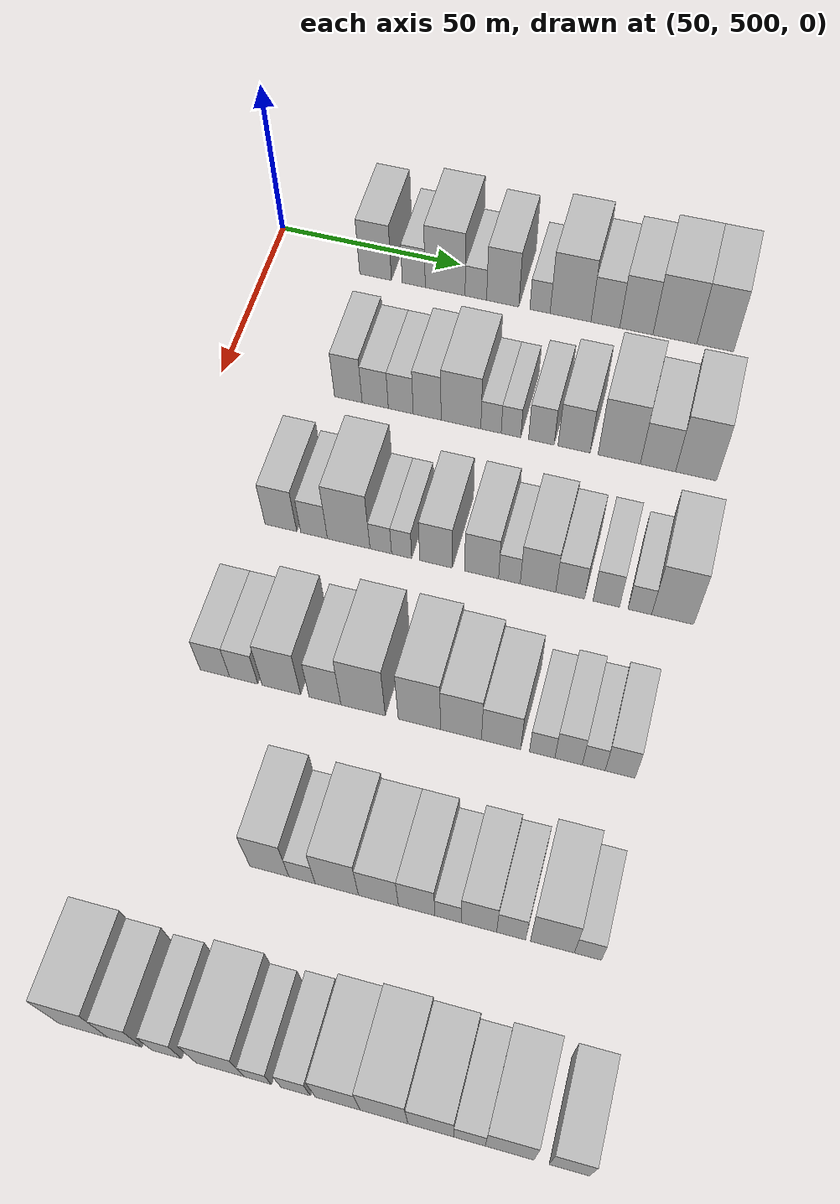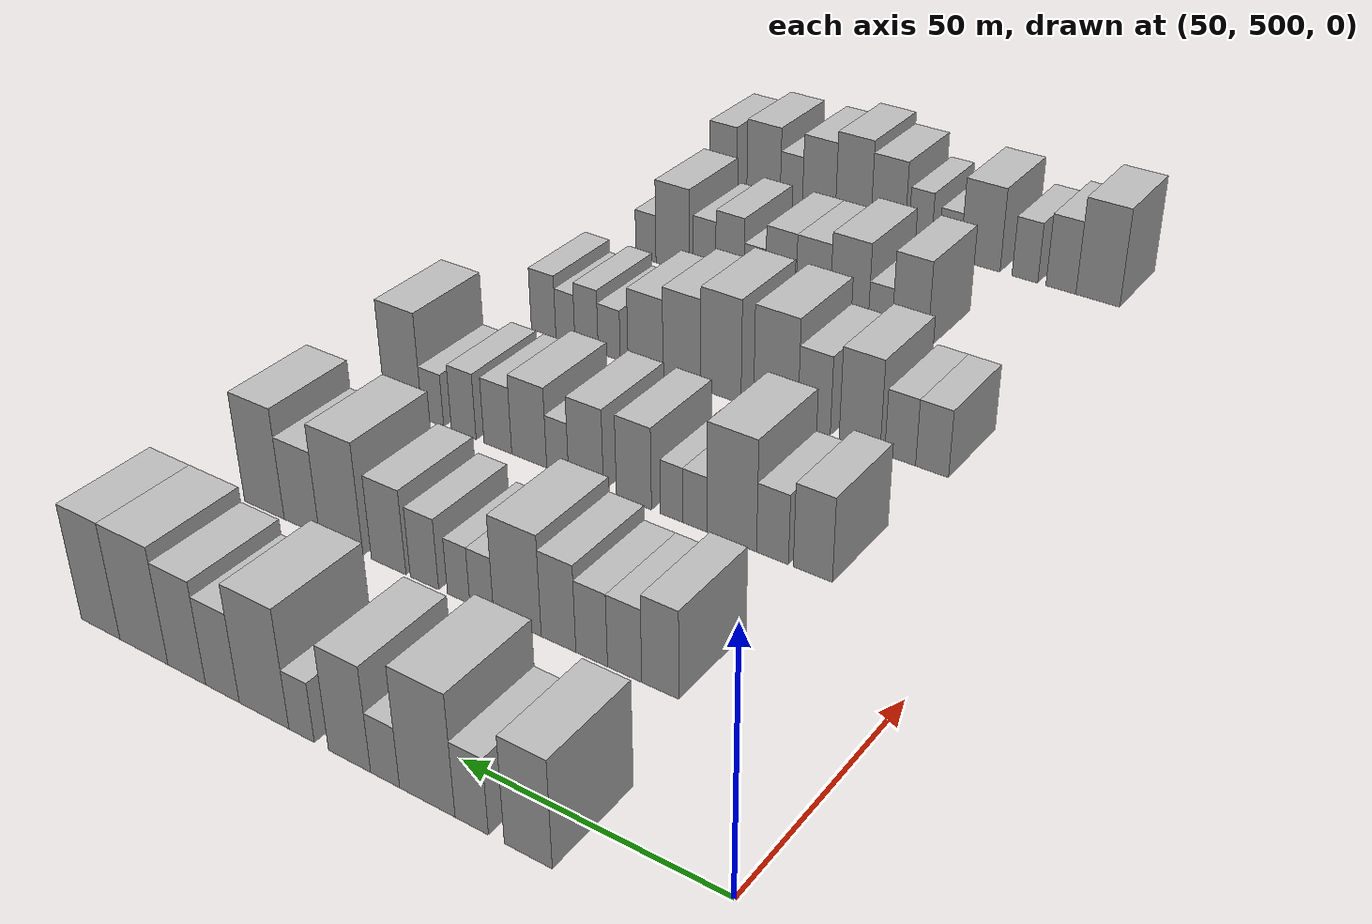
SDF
<sdf version="1.6">
 <world name="default">
  <model name="building_127">
   <static>1</static>
   <pose>50.0000 529.2701 0 0.000000 0.000000 0.000000</pose>
   <link name="link">
    <pose>0 0 10.50 0 0 0</pose>
    <collision name="collision"><geometry><box><size>20.0000 8.8468 21.0000</size></box></geometry></collision>
    <visual name="visual">
     <cast_shadows>0</cast_shadows>
     <geometry><box><size>20.0000 8.8468 21.0000</size></box></geometry>
     <material>
      <script>
       <uri>model://HANNAS_wall/materials/scripts</uri>
       <uri>model://HANNAS_wall/materials/textures</uri>
       <name>vrc/HANNAS_wall</name>
      </script>
     </material>
    </visual>
   </link>
  </model>
  <model name="building_128">
   <static>1</static>
   <pose>50.0000 539.8802 0 0.000000 0.000000 0.000000</pose>
   <link name="link">
    <pose>0 0 7.50 0 0 0</pose>
    <collision name="collision"><geometry><box><size>20.0000 6.3735 15.0000</size></box></geometry></collision>
    <visual name="visual">
     <cast_shadows>0</cast_shadows>
     <geometry><box><size>20.0000 6.3735 15.0000</size></box></geometry>
     <material>
      <script>
       <uri>model://HANNAS_wall/materials/scripts</uri>
       <uri>model://HANNAS_wall/materials/textures</uri>
       <name>vrc/HANNAS_wall</name>
      </script>
     </material>
    </visual>
   </link>
  </model>
  <model name="building_129">
   <static>1</static>
   <pose>50.0000 548.5439 0 0.000000 0.000000 0.000000</pose>
   <link name="link">
    <pose>0 0 12.00 0 0 0</pose>
    <collision name="collision"><geometry><box><size>20.0000 10.9537 24.0000</size></box></geometry></collision>
    <visual name="visual">
     <cast_shadows>0</cast_shadows>
     <geometry><box><size>20.0000 10.9537 24.0000</size></box></geometry>
     <material>
      <script>
       <uri>model://HANNAS_wall/materials/scripts</uri>
       <uri>model://HANNAS_wall/materials/textures</uri>
       <name>vrc/HANNAS_wall</name>
      </script>
     </material>
    </visual>
   </link>
  </model>
  <model name="building_130">
   <static>1</static>
   <pose>50.0000 556.9688 0 0.000000 0.000000 0.000000</pose>
   <link name="link">
    <pose>0 0 6.00 0 0 0</pose>
    <collision name="collision"><geometry><box><size>20.0000 5.8962 12.0000</size></box></geometry></collision>
    <visual name="visual">
     <cast_shadows>0</cast_shadows>
     <geometry><box><size>20.0000 5.8962 12.0000</size></box></geometry>
     <material>
      <script>
       <uri>model://HANNAS_wall/materials/scripts</uri>
       <uri>model://HANNAS_wall/materials/textures</uri>
       <name>vrc/HANNAS_wall</name>
      </script>
     </material>
    </visual>
   </link>
  </model>
  <model name="building_131">
   <static>1</static>
   <pose>50.0000 564.3081 0 0.000000 0.000000 0.000000</pose>
   <link name="link">
    <pose>0 0 10.50 0 0 0</pose>
    <collision name="collision"><geometry><box><size>20.0000 8.7823 21.0000</size></box></geometry></collision>
    <visual name="visual">
     <cast_shadows>0</cast_shadows>
     <geometry><box><size>20.0000 8.7823 21.0000</size></box></geometry>
     <material>
      <script>
       <uri>model://HANNAS_wall/materials/scripts</uri>
       <uri>model://HANNAS_wall/materials/textures</uri>
       <name>vrc/HANNAS_wall</name>
      </script>
     </material>
    </visual>
   </link>
  </model>
  <model name="building_132">
   <static>1</static>
   <pose>50.0000 574.4298 0 0.000000 0.000000 0.000000</pose>
   <link name="link">
    <pose>0 0 6.00 0 0 0</pose>
    <collision name="collision"><geometry><box><size>20.0000 5.4611 12.0000</size></box></geometry></collision>
    <visual name="visual">
     <cast_shadows>0</cast_shadows>
     <geometry><box><size>20.0000 5.4611 12.0000</size></box></geometry>
     <material>
      <script>
       <uri>model://HANNAS_wall/materials/scripts</uri>
       <uri>model://HANNAS_wall/materials/textures</uri>
       <name>vrc/HANNAS_wall</name>
      </script>
     </material>
    </visual>
   </link>
  </model>
  <model name="building_133">
   <static>1</static>
   <pose>50.0000 582.6562 0 0.000000 0.000000 0.000000</pose>
   <link name="link">
    <pose>0 0 12.00 0 0 0</pose>
    <collision name="collision"><geometry><box><size>20.0000 10.9917 24.0000</size></box></geometry></collision>
    <visual name="visual">
     <cast_shadows>0</cast_shadows>
     <geometry><box><size>20.0000 10.9917 24.0000</size></box></geometry>
     <material>
      <script>
       <uri>model://HANNAS_wall/materials/scripts</uri>
       <uri>model://HANNAS_wall/materials/textures</uri>
       <name>vrc/HANNAS_wall</name>
      </script>
     </material>
    </visual>
   </link>
  </model>
  <model name="building_134">
   <static>1</static>
   <pose>50.0000 592.0019 0 0.000000 0.000000 0.000000</pose>
   <link name="link">
    <pose>0 0 9.00 0 0 0</pose>
    <collision name="collision"><geometry><box><size>20.0000 7.6996 18.0000</size></box></geometry></collision>
    <visual name="visual">
     <cast_shadows>0</cast_shadows>
     <geometry><box><size>20.0000 7.6996 18.0000</size></box></geometry>
     <material>
      <script>
       <uri>model://HANNAS_wall/materials/scripts</uri>
       <uri>model://HANNAS_wall/materials/textures</uri>
       <name>vrc/HANNAS_wall</name>
      </script>
     </material>
    </visual>
   </link>
  </model>
  <model name="building_135">
   <static>1</static>
   <pose>50.0000 600.2642 0 0.000000 0.000000 0.000000</pose>
   <link name="link">
    <pose>0 0 10.50 0 0 0</pose>
    <collision name="collision"><geometry><box><size>20.0000 8.8250 21.0000</size></box></geometry></collision>
    <visual name="visual">
     <cast_shadows>0</cast_shadows>
     <geometry><box><size>20.0000 8.8250 21.0000</size></box></geometry>
     <material>
      <script>
       <uri>model://HANNAS_wall/materials/scripts</uri>
       <uri>model://HANNAS_wall/materials/textures</uri>
       <name>vrc/HANNAS_wall</name>
      </script>
     </material>
    </visual>
   </link>
  </model>
  <model name="building_136">
   <static>1</static>
   <pose>50.0000 610.4838 0 0.000000 0.000000 0.000000</pose>
   <link name="link">
    <pose>0 0 12.00 0 0 0</pose>
    <collision name="collision"><geometry><box><size>20.0000 11.6144 24.0000</size></box></geometry></collision>
    <visual name="visual">
     <cast_shadows>0</cast_shadows>
     <geometry><box><size>20.0000 11.6144 24.0000</size></box></geometry>
     <material>
      <script>
       <uri>model://HANNAS_wall/materials/scripts</uri>
       <uri>model://HANNAS_wall/materials/textures</uri>
       <name>vrc/HANNAS_wall</name>
      </script>
     </material>
    </visual>
   </link>
  </model>
  <model name="building_137">
   <static>1</static>
   <pose>50.0000 621.1025 0 0.000000 0.000000 0.000000</pose>
   <link name="link">
    <pose>0 0 12.00 0 0 0</pose>
    <collision name="collision"><geometry><box><size>20.0000 9.6230 24.0000</size></box></geometry></collision>
    <visual name="visual">
     <cast_shadows>0</cast_shadows>
     <geometry><box><size>20.0000 9.6230 24.0000</size></box></geometry>
     <material>
      <script>
       <uri>model://HANNAS_wall/materials/scripts</uri>
       <uri>model://HANNAS_wall/materials/textures</uri>
       <name>vrc/HANNAS_wall</name>
      </script>
     </material>
    </visual>
   </link>
  </model>
  <model name="building_271">
   <static>1</static>
   <pose>90.0000 533.8358 0 0.000000 0.000000 0.000000</pose>
   <link name="link">
    <pose>0 0 9.00 0 0 0</pose>
    <collision name="collision"><geometry><box><size>20.0000 7.3172 18.0000</size></box></geometry></collision>
    <visual name="visual">
     <cast_shadows>0</cast_shadows>
     <geometry><box><size>20.0000 7.3172 18.0000</size></box></geometry>
     <material>
      <script>
       <uri>model://HANNAS_wall/materials/scripts</uri>
       <uri>model://HANNAS_wall/materials/textures</uri>
       <name>vrc/HANNAS_wall</name>
      </script>
     </material>
    </visual>
   </link>
  </model>
  <model name="building_272">
   <static>1</static>
   <pose>90.0000 540.9438 0 0.000000 0.000000 0.000000</pose>
   <link name="link">
    <pose>0 0 7.50 0 0 0</pose>
    <collision name="collision"><geometry><box><size>20.0000 6.8988 15.0000</size></box></geometry></collision>
    <visual name="visual">
     <cast_shadows>0</cast_shadows>
     <geometry><box><size>20.0000 6.8988 15.0000</size></box></geometry>
     <material>
      <script>
       <uri>model://HANNAS_wall/materials/scripts</uri>
       <uri>model://HANNAS_wall/materials/textures</uri>
       <name>vrc/HANNAS_wall</name>
      </script>
     </material>
    </visual>
   </link>
  </model>
  <model name="building_273">
   <static>1</static>
   <pose>90.0000 547.6571 0 0.000000 0.000000 0.000000</pose>
   <link name="link">
    <pose>0 0 7.50 0 0 0</pose>
    <collision name="collision"><geometry><box><size>20.0000 6.5277 15.0000</size></box></geometry></collision>
    <visual name="visual">
     <cast_shadows>0</cast_shadows>
     <geometry><box><size>20.0000 6.5277 15.0000</size></box></geometry>
     <material>
      <script>
       <uri>model://HANNAS_wall/materials/scripts</uri>
       <uri>model://HANNAS_wall/materials/textures</uri>
       <name>vrc/HANNAS_wall</name>
      </script>
     </material>
    </visual>
   </link>
  </model>
  <model name="building_274">
   <static>1</static>
   <pose>90.0000 554.5570 0 0.000000 0.000000 0.000000</pose>
   <link name="link">
    <pose>0 0 9.00 0 0 0</pose>
    <collision name="collision"><geometry><box><size>20.0000 7.2721 18.0000</size></box></geometry></collision>
    <visual name="visual">
     <cast_shadows>0</cast_shadows>
     <geometry><box><size>20.0000 7.2721 18.0000</size></box></geometry>
     <material>
      <script>
       <uri>model://HANNAS_wall/materials/scripts</uri>
       <uri>model://HANNAS_wall/materials/textures</uri>
       <name>vrc/HANNAS_wall</name>
      </script>
     </material>
    </visual>
   </link>
  </model>
  <model name="building_275">
   <static>1</static>
   <pose>90.0000 563.3433 0 0.000000 0.000000 0.000000</pose>
   <link name="link">
    <pose>0 0 10.50 0 0 0</pose>
    <collision name="collision"><geometry><box><size>20.0000 10.3005 21.0000</size></box></geometry></collision>
    <visual name="visual">
     <cast_shadows>0</cast_shadows>
     <geometry><box><size>20.0000 10.3005 21.0000</size></box></geometry>
     <material>
      <script>
       <uri>model://HANNAS_wall/materials/scripts</uri>
       <uri>model://HANNAS_wall/materials/textures</uri>
       <name>vrc/HANNAS_wall</name>
      </script>
     </material>
    </visual>
   </link>
  </model>
  <model name="building_276">
   <static>1</static>
   <pose>90.0000 571.1190 0 0.000000 0.000000 0.000000</pose>
   <link name="link">
    <pose>0 0 6.00 0 0 0</pose>
    <collision name="collision"><geometry><box><size>20.0000 5.2509 12.0000</size></box></geometry></collision>
    <visual name="visual">
     <cast_shadows>0</cast_shadows>
     <geometry><box><size>20.0000 5.2509 12.0000</size></box></geometry>
     <material>
      <script>
       <uri>model://HANNAS_wall/materials/scripts</uri>
       <uri>model://HANNAS_wall/materials/textures</uri>
       <name>vrc/HANNAS_wall</name>
      </script>
     </material>
    </visual>
   </link>
  </model>
  <model name="building_277">
   <static>1</static>
   <pose>90.0000 576.2623 0 0.000000 0.000000 0.000000</pose>
   <link name="link">
    <pose>0 0 6.00 0 0 0</pose>
    <collision name="collision"><geometry><box><size>20.0000 5.0358 12.0000</size></box></geometry></collision>
    <visual name="visual">
     <cast_shadows>0</cast_shadows>
     <geometry><box><size>20.0000 5.0358 12.0000</size></box></geometry>
     <material>
      <script>
       <uri>model://HANNAS_wall/materials/scripts</uri>
       <uri>model://HANNAS_wall/materials/textures</uri>
       <name>vrc/HANNAS_wall</name>
      </script>
     </material>
    </visual>
   </link>
  </model>
  <model name="building_278">
   <static>1</static>
   <pose>90.0000 584.0441 0 0.000000 0.000000 0.000000</pose>
   <link name="link">
    <pose>0 0 7.50 0 0 0</pose>
    <collision name="collision"><geometry><box><size>20.0000 6.5279 15.0000</size></box></geometry></collision>
    <visual name="visual">
     <cast_shadows>0</cast_shadows>
     <geometry><box><size>20.0000 6.5279 15.0000</size></box></geometry>
     <material>
      <script>
       <uri>model://HANNAS_wall/materials/scripts</uri>
       <uri>model://HANNAS_wall/materials/textures</uri>
       <name>vrc/HANNAS_wall</name>
      </script>
     </material>
    </visual>
   </link>
  </model>
  <model name="building_279">
   <static>1</static>
   <pose>90.0000 592.3904 0 0.000000 0.000000 0.000000</pose>
   <link name="link">
    <pose>0 0 9.00 0 0 0</pose>
    <collision name="collision"><geometry><box><size>20.0000 8.1646 18.0000</size></box></geometry></collision>
    <visual name="visual">
     <cast_shadows>0</cast_shadows>
     <geometry><box><size>20.0000 8.1646 18.0000</size></box></geometry>
     <material>
      <script>
       <uri>model://HANNAS_wall/materials/scripts</uri>
       <uri>model://HANNAS_wall/materials/textures</uri>
       <name>vrc/HANNAS_wall</name>
      </script>
     </material>
    </visual>
   </link>
  </model>
  <model name="building_280">
   <static>1</static>
   <pose>90.0000 603.7991 0 0.000000 0.000000 0.000000</pose>
   <link name="link">
    <pose>0 0 12.00 0 0 0</pose>
    <collision name="collision"><geometry><box><size>20.0000 10.6528 24.0000</size></box></geometry></collision>
    <visual name="visual">
     <cast_shadows>0</cast_shadows>
     <geometry><box><size>20.0000 10.6528 24.0000</size></box></geometry>
     <material>
      <script>
       <uri>model://HANNAS_wall/materials/scripts</uri>
       <uri>model://HANNAS_wall/materials/textures</uri>
       <name>vrc/HANNAS_wall</name>
      </script>
     </material>
    </visual>
   </link>
  </model>
  <model name="building_281">
   <static>1</static>
   <pose>90.0000 613.5311 0 0.000000 0.000000 0.000000</pose>
   <link name="link">
    <pose>0 0 9.00 0 0 0</pose>
    <collision name="collision"><geometry><box><size>20.0000 8.8112 18.0000</size></box></geometry></collision>
    <visual name="visual">
     <cast_shadows>0</cast_shadows>
     <geometry><box><size>20.0000 8.8112 18.0000</size></box></geometry>
     <material>
      <script>
       <uri>model://HANNAS_wall/materials/scripts</uri>
       <uri>model://HANNAS_wall/materials/textures</uri>
       <name>vrc/HANNAS_wall</name>
      </script>
     </material>
    </visual>
   </link>
  </model>
  <model name="building_282">
   <static>1</static>
   <pose>90.0000 623.0344 0 0.000000 0.000000 0.000000</pose>
   <link name="link">
    <pose>0 0 12.00 0 0 0</pose>
    <collision name="collision"><geometry><box><size>20.0000 10.1955 24.0000</size></box></geometry></collision>
    <visual name="visual">
     <cast_shadows>0</cast_shadows>
     <geometry><box><size>20.0000 10.1955 24.0000</size></box></geometry>
     <material>
      <script>
       <uri>model://HANNAS_wall/materials/scripts</uri>
       <uri>model://HANNAS_wall/materials/textures</uri>
       <name>vrc/HANNAS_wall</name>
      </script>
     </material>
    </visual>
   </link>
  </model>
  <model name="building_408">
   <static>1</static>
   <pose>130.0000 529.0798 0 0.000000 0.000000 0.000000</pose>
   <link name="link">
    <pose>0 0 9.00 0 0 0</pose>
    <collision name="collision"><geometry><box><size>20.0000 8.0129 18.0000</size></box></geometry></collision>
    <visual name="visual">
     <cast_shadows>0</cast_shadows>
     <geometry><box><size>20.0000 8.0129 18.0000</size></box></geometry>
     <material>
      <script>
       <uri>model://HANNAS_wall/materials/scripts</uri>
       <uri>model://HANNAS_wall/materials/textures</uri>
       <name>vrc/HANNAS_wall</name>
      </script>
     </material>
    </visual>
   </link>
  </model>
  <model name="building_409">
   <static>1</static>
   <pose>130.0000 537.4322 0 0.000000 0.000000 0.000000</pose>
   <link name="link">
    <pose>0 0 7.50 0 0 0</pose>
    <collision name="collision"><geometry><box><size>20.0000 6.6917 15.0000</size></box></geometry></collision>
    <visual name="visual">
     <cast_shadows>0</cast_shadows>
     <geometry><box><size>20.0000 6.6917 15.0000</size></box></geometry>
     <material>
      <script>
       <uri>model://HANNAS_wall/materials/scripts</uri>
       <uri>model://HANNAS_wall/materials/textures</uri>
       <name>vrc/HANNAS_wall</name>
      </script>
     </material>
    </visual>
   </link>
  </model>
  <model name="building_410">
   <static>1</static>
   <pose>130.0000 546.0918 0 0.000000 0.000000 0.000000</pose>
   <link name="link">
    <pose>0 0 12.00 0 0 0</pose>
    <collision name="collision"><geometry><box><size>20.0000 10.6275 24.0000</size></box></geometry></collision>
    <visual name="visual">
     <cast_shadows>0</cast_shadows>
     <geometry><box><size>20.0000 10.6275 24.0000</size></box></geometry>
     <material>
      <script>
       <uri>model://HANNAS_wall/materials/scripts</uri>
       <uri>model://HANNAS_wall/materials/textures</uri>
       <name>vrc/HANNAS_wall</name>
      </script>
     </material>
    </visual>
   </link>
  </model>
  <model name="building_411">
   <static>1</static>
   <pose>130.0000 554.0796 0 0.000000 0.000000 0.000000</pose>
   <link name="link">
    <pose>0 0 6.00 0 0 0</pose>
    <collision name="collision"><geometry><box><size>20.0000 5.3481 12.0000</size></box></geometry></collision>
    <visual name="visual">
     <cast_shadows>0</cast_shadows>
     <geometry><box><size>20.0000 5.3481 12.0000</size></box></geometry>
     <material>
      <script>
       <uri>model://HANNAS_wall/materials/scripts</uri>
       <uri>model://HANNAS_wall/materials/textures</uri>
       <name>vrc/HANNAS_wall</name>
      </script>
     </material>
    </visual>
   </link>
  </model>
  <model name="building_412">
   <static>1</static>
   <pose>130.0000 559.2386 0 0.000000 0.000000 0.000000</pose>
   <link name="link">
    <pose>0 0 6.00 0 0 0</pose>
    <collision name="collision"><geometry><box><size>20.0000 4.9700 12.0000</size></box></geometry></collision>
    <visual name="visual">
     <cast_shadows>0</cast_shadows>
     <geometry><box><size>20.0000 4.9700 12.0000</size></box></geometry>
     <material>
      <script>
       <uri>model://HANNAS_wall/materials/scripts</uri>
       <uri>model://HANNAS_wall/materials/textures</uri>
       <name>vrc/HANNAS_wall</name>
      </script>
     </material>
    </visual>
   </link>
  </model>
  <model name="building_413">
   <static>1</static>
   <pose>130.0000 567.7250 0 0.000000 0.000000 0.000000</pose>
   <link name="link">
    <pose>0 0 9.00 0 0 0</pose>
    <collision name="collision"><geometry><box><size>20.0000 8.0028 18.0000</size></box></geometry></collision>
    <visual name="visual">
     <cast_shadows>0</cast_shadows>
     <geometry><box><size>20.0000 8.0028 18.0000</size></box></geometry>
     <material>
      <script>
       <uri>model://HANNAS_wall/materials/scripts</uri>
       <uri>model://HANNAS_wall/materials/textures</uri>
       <name>vrc/HANNAS_wall</name>
      </script>
     </material>
    </visual>
   </link>
  </model>
  <model name="building_414">
   <static>1</static>
   <pose>130.0000 578.8462 0 0.000000 0.000000 0.000000</pose>
   <link name="link">
    <pose>0 0 9.00 0 0 0</pose>
    <collision name="collision"><geometry><box><size>20.0000 8.2394 18.0000</size></box></geometry></collision>
    <visual name="visual">
     <cast_shadows>0</cast_shadows>
     <geometry><box><size>20.0000 8.2394 18.0000</size></box></geometry>
     <material>
      <script>
       <uri>model://HANNAS_wall/materials/scripts</uri>
       <uri>model://HANNAS_wall/materials/textures</uri>
       <name>vrc/HANNAS_wall</name>
      </script>
     </material>
    </visual>
   </link>
  </model>
  <model name="building_415">
   <static>1</static>
   <pose>130.0000 585.5854 0 0.000000 0.000000 0.000000</pose>
   <link name="link">
    <pose>0 0 6.00 0 0 0</pose>
    <collision name="collision"><geometry><box><size>20.0000 5.2391 12.0000</size></box></geometry></collision>
    <visual name="visual">
     <cast_shadows>0</cast_shadows>
     <geometry><box><size>20.0000 5.2391 12.0000</size></box></geometry>
     <material>
      <script>
       <uri>model://HANNAS_wall/materials/scripts</uri>
       <uri>model://HANNAS_wall/materials/textures</uri>
       <name>vrc/HANNAS_wall</name>
      </script>
     </material>
    </visual>
   </link>
  </model>
  <model name="building_416">
   <static>1</static>
   <pose>130.0000 592.4813 0 0.000000 0.000000 0.000000</pose>
   <link name="link">
    <pose>0 0 9.00 0 0 0</pose>
    <collision name="collision"><geometry><box><size>20.0000 8.5528 18.0000</size></box></geometry></collision>
    <visual name="visual">
     <cast_shadows>0</cast_shadows>
     <geometry><box><size>20.0000 8.5528 18.0000</size></box></geometry>
     <material>
      <script>
       <uri>model://HANNAS_wall/materials/scripts</uri>
       <uri>model://HANNAS_wall/materials/textures</uri>
       <name>vrc/HANNAS_wall</name>
      </script>
     </material>
    </visual>
   </link>
  </model>
  <model name="building_417">
   <static>1</static>
   <pose>130.0000 600.2221 0 0.000000 0.000000 0.000000</pose>
   <link name="link">
    <pose>0 0 7.50 0 0 0</pose>
    <collision name="collision"><geometry><box><size>20.0000 6.9287 15.0000</size></box></geometry></collision>
    <visual name="visual">
     <cast_shadows>0</cast_shadows>
     <geometry><box><size>20.0000 6.9287 15.0000</size></box></geometry>
     <material>
      <script>
       <uri>model://HANNAS_wall/materials/scripts</uri>
       <uri>model://HANNAS_wall/materials/textures</uri>
       <name>vrc/HANNAS_wall</name>
      </script>
     </material>
    </visual>
   </link>
  </model>
  <model name="building_418">
   <static>1</static>
   <pose>130.0000 608.8406 0 0.000000 0.000000 0.000000</pose>
   <link name="link">
    <pose>0 0 7.50 0 0 0</pose>
    <collision name="collision"><geometry><box><size>20.0000 6.3081 15.0000</size></box></geometry></collision>
    <visual name="visual">
     <cast_shadows>0</cast_shadows>
     <geometry><box><size>20.0000 6.3081 15.0000</size></box></geometry>
     <material>
      <script>
       <uri>model://HANNAS_wall/materials/scripts</uri>
       <uri>model://HANNAS_wall/materials/textures</uri>
       <name>vrc/HANNAS_wall</name>
      </script>
     </material>
    </visual>
   </link>
  </model>
  <model name="building_419">
   <static>1</static>
   <pose>130.0000 616.7882 0 0.000000 0.000000 0.000000</pose>
   <link name="link">
    <pose>0 0 6.00 0 0 0</pose>
    <collision name="collision"><geometry><box><size>20.0000 5.5871 12.0000</size></box></geometry></collision>
    <visual name="visual">
     <cast_shadows>0</cast_shadows>
     <geometry><box><size>20.0000 5.5871 12.0000</size></box></geometry>
     <material>
      <script>
       <uri>model://HANNAS_wall/materials/scripts</uri>
       <uri>model://HANNAS_wall/materials/textures</uri>
       <name>vrc/HANNAS_wall</name>
      </script>
     </material>
    </visual>
   </link>
  </model>
  <model name="building_420">
   <static>1</static>
   <pose>130.0000 624.5392 0 0.000000 0.000000 0.000000</pose>
   <link name="link">
    <pose>0 0 12.00 0 0 0</pose>
    <collision name="collision"><geometry><box><size>20.0000 9.9149 24.0000</size></box></geometry></collision>
    <visual name="visual">
     <cast_shadows>0</cast_shadows>
     <geometry><box><size>20.0000 9.9149 24.0000</size></box></geometry>
     <material>
      <script>
       <uri>model://HANNAS_wall/materials/scripts</uri>
       <uri>model://HANNAS_wall/materials/textures</uri>
       <name>vrc/HANNAS_wall</name>
      </script>
     </material>
    </visual>
   </link>
  </model>
  <model name="building_544">
   <static>1</static>
   <pose>170.0000 526.5448 0 0.000000 0.000000 0.000000</pose>
   <link name="link">
    <pose>0 0 7.50 0 0 0</pose>
    <collision name="collision"><geometry><box><size>20.0000 7.0624 15.0000</size></box></geometry></collision>
    <visual name="visual">
     <cast_shadows>0</cast_shadows>
     <geometry><box><size>20.0000 7.0624 15.0000</size></box></geometry>
     <material>
      <script>
       <uri>model://HANNAS_wall/materials/scripts</uri>
       <uri>model://HANNAS_wall/materials/textures</uri>
       <name>vrc/HANNAS_wall</name>
      </script>
     </material>
    </visual>
   </link>
  </model>
  <model name="building_545">
   <static>1</static>
   <pose>170.0000 533.4502 0 0.000000 0.000000 0.000000</pose>
   <link name="link">
    <pose>0 0 7.50 0 0 0</pose>
    <collision name="collision"><geometry><box><size>20.0000 6.7485 15.0000</size></box></geometry></collision>
    <visual name="visual">
     <cast_shadows>0</cast_shadows>
     <geometry><box><size>20.0000 6.7485 15.0000</size></box></geometry>
     <material>
      <script>
       <uri>model://HANNAS_wall/materials/scripts</uri>
       <uri>model://HANNAS_wall/materials/textures</uri>
       <name>vrc/HANNAS_wall</name>
      </script>
     </material>
    </visual>
   </link>
  </model>
  <model name="building_546">
   <static>1</static>
   <pose>170.0000 542.3973 0 0.000000 0.000000 0.000000</pose>
   <link name="link">
    <pose>0 0 10.50 0 0 0</pose>
    <collision name="collision"><geometry><box><size>20.0000 9.1457 21.0000</size></box></geometry></collision>
    <visual name="visual">
     <cast_shadows>0</cast_shadows>
     <geometry><box><size>20.0000 9.1457 21.0000</size></box></geometry>
     <material>
      <script>
       <uri>model://HANNAS_wall/materials/scripts</uri>
       <uri>model://HANNAS_wall/materials/textures</uri>
       <name>vrc/HANNAS_wall</name>
      </script>
     </material>
    </visual>
   </link>
  </model>
  <model name="building_547">
   <static>1</static>
   <pose>170.0000 552.7058 0 0.000000 0.000000 0.000000</pose>
   <link name="link">
    <pose>0 0 9.00 0 0 0</pose>
    <collision name="collision"><geometry><box><size>20.0000 7.4714 18.0000</size></box></geometry></collision>
    <visual name="visual">
     <cast_shadows>0</cast_shadows>
     <geometry><box><size>20.0000 7.4714 18.0000</size></box></geometry>
     <material>
      <script>
       <uri>model://HANNAS_wall/materials/scripts</uri>
       <uri>model://HANNAS_wall/materials/textures</uri>
       <name>vrc/HANNAS_wall</name>
      </script>
     </material>
    </visual>
   </link>
  </model>
  <model name="building_548">
   <static>1</static>
   <pose>170.0000 561.6274 0 0.000000 0.000000 0.000000</pose>
   <link name="link">
    <pose>0 0 12.00 0 0 0</pose>
    <collision name="collision"><geometry><box><size>20.0000 10.3718 24.0000</size></box></geometry></collision>
    <visual name="visual">
     <cast_shadows>0</cast_shadows>
     <geometry><box><size>20.0000 10.3718 24.0000</size></box></geometry>
     <material>
      <script>
       <uri>model://HANNAS_wall/materials/scripts</uri>
       <uri>model://HANNAS_wall/materials/textures</uri>
       <name>vrc/HANNAS_wall</name>
      </script>
     </material>
    </visual>
   </link>
  </model>
  <model name="building_549">
   <static>1</static>
   <pose>170.0000 574.6885 0 0.000000 0.000000 0.000000</pose>
   <link name="link">
    <pose>0 0 12.00 0 0 0</pose>
    <collision name="collision"><geometry><box><size>20.0000 9.7502 24.0000</size></box></geometry></collision>
    <visual name="visual">
     <cast_shadows>0</cast_shadows>
     <geometry><box><size>20.0000 9.7502 24.0000</size></box></geometry>
     <material>
      <script>
       <uri>model://HANNAS_wall/materials/scripts</uri>
       <uri>model://HANNAS_wall/materials/textures</uri>
       <name>vrc/HANNAS_wall</name>
      </script>
     </material>
    </visual>
   </link>
  </model>
  <model name="building_550">
   <static>1</static>
   <pose>170.0000 584.2604 0 0.000000 0.000000 0.000000</pose>
   <link name="link">
    <pose>0 0 10.50 0 0 0</pose>
    <collision name="collision"><geometry><box><size>20.0000 9.3936 21.0000</size></box></geometry></collision>
    <visual name="visual">
     <cast_shadows>0</cast_shadows>
     <geometry><box><size>20.0000 9.3936 21.0000</size></box></geometry>
     <material>
      <script>
       <uri>model://HANNAS_wall/materials/scripts</uri>
       <uri>model://HANNAS_wall/materials/textures</uri>
       <name>vrc/HANNAS_wall</name>
      </script>
     </material>
    </visual>
   </link>
  </model>
  <model name="building_551">
   <static>1</static>
   <pose>170.0000 593.4135 0 0.000000 0.000000 0.000000</pose>
   <link name="link">
    <pose>0 0 9.00 0 0 0</pose>
    <collision name="collision"><geometry><box><size>20.0000 8.9126 18.0000</size></box></geometry></collision>
    <visual name="visual">
     <cast_shadows>0</cast_shadows>
     <geometry><box><size>20.0000 8.9126 18.0000</size></box></geometry>
     <material>
      <script>
       <uri>model://HANNAS_wall/materials/scripts</uri>
       <uri>model://HANNAS_wall/materials/textures</uri>
       <name>vrc/HANNAS_wall</name>
      </script>
     </material>
    </visual>
   </link>
  </model>
  <model name="building_552">
   <static>1</static>
   <pose>170.0000 602.7476 0 0.000000 0.000000 0.000000</pose>
   <link name="link">
    <pose>0 0 6.00 0 0 0</pose>
    <collision name="collision"><geometry><box><size>20.0000 5.7557 12.0000</size></box></geometry></collision>
    <visual name="visual">
     <cast_shadows>0</cast_shadows>
     <geometry><box><size>20.0000 5.7557 12.0000</size></box></geometry>
     <material>
      <script>
       <uri>model://HANNAS_wall/materials/scripts</uri>
       <uri>model://HANNAS_wall/materials/textures</uri>
       <name>vrc/HANNAS_wall</name>
      </script>
     </material>
    </visual>
   </link>
  </model>
  <model name="building_553">
   <static>1</static>
   <pose>170.0000 608.7017 0 0.000000 0.000000 0.000000</pose>
   <link name="link">
    <pose>0 0 7.50 0 0 0</pose>
    <collision name="collision"><geometry><box><size>20.0000 6.1526 15.0000</size></box></geometry></collision>
    <visual name="visual">
     <cast_shadows>0</cast_shadows>
     <geometry><box><size>20.0000 6.1526 15.0000</size></box></geometry>
     <material>
      <script>
       <uri>model://HANNAS_wall/materials/scripts</uri>
       <uri>model://HANNAS_wall/materials/textures</uri>
       <name>vrc/HANNAS_wall</name>
      </script>
     </material>
    </visual>
   </link>
  </model>
  <model name="building_554">
   <static>1</static>
   <pose>170.0000 614.3354 0 0.000000 0.000000 0.000000</pose>
   <link name="link">
    <pose>0 0 6.00 0 0 0</pose>
    <collision name="collision"><geometry><box><size>20.0000 5.1147 12.0000</size></box></geometry></collision>
    <visual name="visual">
     <cast_shadows>0</cast_shadows>
     <geometry><box><size>20.0000 5.1147 12.0000</size></box></geometry>
     <material>
      <script>
       <uri>model://HANNAS_wall/materials/scripts</uri>
       <uri>model://HANNAS_wall/materials/textures</uri>
       <name>vrc/HANNAS_wall</name>
      </script>
     </material>
    </visual>
   </link>
  </model>
  <model name="building_555">
   <static>1</static>
   <pose>170.0000 620.2229 0 0.000000 0.000000 0.000000</pose>
   <link name="link">
    <pose>0 0 7.50 0 0 0</pose>
    <collision name="collision"><geometry><box><size>20.0000 6.6603 15.0000</size></box></geometry></collision>
    <visual name="visual">
     <cast_shadows>0</cast_shadows>
     <geometry><box><size>20.0000 6.6603 15.0000</size></box></geometry>
     <material>
      <script>
       <uri>model://HANNAS_wall/materials/scripts</uri>
       <uri>model://HANNAS_wall/materials/textures</uri>
       <name>vrc/HANNAS_wall</name>
      </script>
     </material>
    </visual>
   </link>
  </model>
  <model name="building_683">
   <static>1</static>
   <pose>210.0000 552.9607 0 0.000000 0.000000 0.000000</pose>
   <link name="link">
    <pose>0 0 10.50 0 0 0</pose>
    <collision name="collision"><geometry><box><size>20.0000 8.6331 21.0000</size></box></geometry></collision>
    <visual name="visual">
     <cast_shadows>0</cast_shadows>
     <geometry><box><size>20.0000 8.6331 21.0000</size></box></geometry>
     <material>
      <script>
       <uri>model://HANNAS_wall/materials/scripts</uri>
       <uri>model://HANNAS_wall/materials/textures</uri>
       <name>vrc/HANNAS_wall</name>
      </script>
     </material>
    </visual>
   </link>
  </model>
  <model name="building_684">
   <static>1</static>
   <pose>210.0000 560.1741 0 0.000000 0.000000 0.000000</pose>
   <link name="link">
    <pose>0 0 6.00 0 0 0</pose>
    <collision name="collision"><geometry><box><size>20.0000 5.7938 12.0000</size></box></geometry></collision>
    <visual name="visual">
     <cast_shadows>0</cast_shadows>
     <geometry><box><size>20.0000 5.7938 12.0000</size></box></geometry>
     <material>
      <script>
       <uri>model://HANNAS_wall/materials/scripts</uri>
       <uri>model://HANNAS_wall/materials/textures</uri>
       <name>vrc/HANNAS_wall</name>
      </script>
     </material>
    </visual>
   </link>
  </model>
  <model name="building_685">
   <static>1</static>
   <pose>210.0000 567.8221 0 0.000000 0.000000 0.000000</pose>
   <link name="link">
    <pose>0 0 10.50 0 0 0</pose>
    <collision name="collision"><geometry><box><size>20.0000 9.5022 21.0000</size></box></geometry></collision>
    <visual name="visual">
     <cast_shadows>0</cast_shadows>
     <geometry><box><size>20.0000 9.5022 21.0000</size></box></geometry>
     <material>
      <script>
       <uri>model://HANNAS_wall/materials/scripts</uri>
       <uri>model://HANNAS_wall/materials/textures</uri>
       <name>vrc/HANNAS_wall</name>
      </script>
     </material>
    </visual>
   </link>
  </model>
  <model name="building_686">
   <static>1</static>
   <pose>210.0000 576.9155 0 0.000000 0.000000 0.000000</pose>
   <link name="link">
    <pose>0 0 9.00 0 0 0</pose>
    <collision name="collision"><geometry><box><size>20.0000 8.6846 18.0000</size></box></geometry></collision>
    <visual name="visual">
     <cast_shadows>0</cast_shadows>
     <geometry><box><size>20.0000 8.6846 18.0000</size></box></geometry>
     <material>
      <script>
       <uri>model://HANNAS_wall/materials/scripts</uri>
       <uri>model://HANNAS_wall/materials/textures</uri>
       <name>vrc/HANNAS_wall</name>
      </script>
     </material>
    </visual>
   </link>
  </model>
  <model name="building_687">
   <static>1</static>
   <pose>210.0000 585.1874 0 0.000000 0.000000 0.000000</pose>
   <link name="link">
    <pose>0 0 9.00 0 0 0</pose>
    <collision name="collision"><geometry><box><size>20.0000 7.8591 18.0000</size></box></geometry></collision>
    <visual name="visual">
     <cast_shadows>0</cast_shadows>
     <geometry><box><size>20.0000 7.8591 18.0000</size></box></geometry>
     <material>
      <script>
       <uri>model://HANNAS_wall/materials/scripts</uri>
       <uri>model://HANNAS_wall/materials/textures</uri>
       <name>vrc/HANNAS_wall</name>
      </script>
     </material>
    </visual>
   </link>
  </model>
  <model name="building_688">
   <static>1</static>
   <pose>210.0000 591.9306 0 0.000000 0.000000 0.000000</pose>
   <link name="link">
    <pose>0 0 6.00 0 0 0</pose>
    <collision name="collision"><geometry><box><size>20.0000 5.6272 12.0000</size></box></geometry></collision>
    <visual name="visual">
     <cast_shadows>0</cast_shadows>
     <geometry><box><size>20.0000 5.6272 12.0000</size></box></geometry>
     <material>
      <script>
       <uri>model://HANNAS_wall/materials/scripts</uri>
       <uri>model://HANNAS_wall/materials/textures</uri>
       <name>vrc/HANNAS_wall</name>
      </script>
     </material>
    </visual>
   </link>
  </model>
  <model name="building_689">
   <static>1</static>
   <pose>210.0000 598.5433 0 0.000000 0.000000 0.000000</pose>
   <link name="link">
    <pose>0 0 9.00 0 0 0</pose>
    <collision name="collision"><geometry><box><size>20.0000 7.5983 18.0000</size></box></geometry></collision>
    <visual name="visual">
     <cast_shadows>0</cast_shadows>
     <geometry><box><size>20.0000 7.5983 18.0000</size></box></geometry>
     <material>
      <script>
       <uri>model://HANNAS_wall/materials/scripts</uri>
       <uri>model://HANNAS_wall/materials/textures</uri>
       <name>vrc/HANNAS_wall</name>
      </script>
     </material>
    </visual>
   </link>
  </model>
  <model name="building_690">
   <static>1</static>
   <pose>210.0000 605.4168 0 0.000000 0.000000 0.000000</pose>
   <link name="link">
    <pose>0 0 7.50 0 0 0</pose>
    <collision name="collision"><geometry><box><size>20.0000 6.1486 15.0000</size></box></geometry></collision>
    <visual name="visual">
     <cast_shadows>0</cast_shadows>
     <geometry><box><size>20.0000 6.1486 15.0000</size></box></geometry>
     <material>
      <script>
       <uri>model://HANNAS_wall/materials/scripts</uri>
       <uri>model://HANNAS_wall/materials/textures</uri>
       <name>vrc/HANNAS_wall</name>
      </script>
     </material>
    </visual>
   </link>
  </model>
  <model name="building_691">
   <static>1</static>
   <pose>210.0000 614.1364 0 0.000000 0.000000 0.000000</pose>
   <link name="link">
    <pose>0 0 10.50 0 0 0</pose>
    <collision name="collision"><geometry><box><size>20.0000 9.2906 21.0000</size></box></geometry></collision>
    <visual name="visual">
     <cast_shadows>0</cast_shadows>
     <geometry><box><size>20.0000 9.2906 21.0000</size></box></geometry>
     <material>
      <script>
       <uri>model://HANNAS_wall/materials/scripts</uri>
       <uri>model://HANNAS_wall/materials/textures</uri>
       <name>vrc/HANNAS_wall</name>
      </script>
     </material>
    </visual>
   </link>
  </model>
  <model name="building_692">
   <static>1</static>
   <pose>210.0000 621.6108 0 0.000000 0.000000 0.000000</pose>
   <link name="link">
    <pose>0 0 6.00 0 0 0</pose>
    <collision name="collision"><geometry><box><size>20.0000 5.6582 12.0000</size></box></geometry></collision>
    <visual name="visual">
     <cast_shadows>0</cast_shadows>
     <geometry><box><size>20.0000 5.6582 12.0000</size></box></geometry>
     <material>
      <script>
       <uri>model://HANNAS_wall/materials/scripts</uri>
       <uri>model://HANNAS_wall/materials/textures</uri>
       <name>vrc/HANNAS_wall</name>
      </script>
     </material>
    </visual>
   </link>
  </model>
  <model name="building_820">
   <static>1</static>
   <pose>250.0000 527.2621 0 0.000000 0.000000 0.000000</pose>
   <link name="link">
    <pose>0 0 12.00 0 0 0</pose>
    <collision name="collision"><geometry><box><size>20.0000 10.4434 24.0000</size></box></geometry></collision>
    <visual name="visual">
     <cast_shadows>0</cast_shadows>
     <geometry><box><size>20.0000 10.4434 24.0000</size></box></geometry>
     <material>
      <script>
       <uri>model://HANNAS_wall/materials/scripts</uri>
       <uri>model://HANNAS_wall/materials/textures</uri>
       <name>vrc/HANNAS_wall</name>
      </script>
     </material>
    </visual>
   </link>
  </model>
  <model name="building_821">
   <static>1</static>
   <pose>250.0000 536.1134 0 0.000000 0.000000 0.000000</pose>
   <link name="link">
    <pose>0 0 9.00 0 0 0</pose>
    <collision name="collision"><geometry><box><size>20.0000 7.2593 18.0000</size></box></geometry></collision>
    <visual name="visual">
     <cast_shadows>0</cast_shadows>
     <geometry><box><size>20.0000 7.2593 18.0000</size></box></geometry>
     <material>
      <script>
       <uri>model://HANNAS_wall/materials/scripts</uri>
       <uri>model://HANNAS_wall/materials/textures</uri>
       <name>vrc/HANNAS_wall</name>
      </script>
     </material>
    </visual>
   </link>
  </model>
  <model name="building_822">
   <static>1</static>
   <pose>250.0000 544.9265 0 0.000000 0.000000 0.000000</pose>
   <link name="link">
    <pose>0 0 7.50 0 0 0</pose>
    <collision name="collision"><geometry><box><size>20.0000 6.3669 15.0000</size></box></geometry></collision>
    <visual name="visual">
     <cast_shadows>0</cast_shadows>
     <geometry><box><size>20.0000 6.3669 15.0000</size></box></geometry>
     <material>
      <script>
       <uri>model://HANNAS_wall/materials/scripts</uri>
       <uri>model://HANNAS_wall/materials/textures</uri>
       <name>vrc/HANNAS_wall</name>
      </script>
     </material>
    </visual>
   </link>
  </model>
  <model name="building_823">
   <static>1</static>
   <pose>250.0000 556.1672 0 0.000000 0.000000 0.000000</pose>
   <link name="link">
    <pose>0 0 10.50 0 0 0</pose>
    <collision name="collision"><geometry><box><size>20.0000 10.1144 21.0000</size></box></geometry></collision>
    <visual name="visual">
     <cast_shadows>0</cast_shadows>
     <geometry><box><size>20.0000 10.1144 21.0000</size></box></geometry>
     <material>
      <script>
       <uri>model://HANNAS_wall/materials/scripts</uri>
       <uri>model://HANNAS_wall/materials/textures</uri>
       <name>vrc/HANNAS_wall</name>
      </script>
     </material>
    </visual>
   </link>
  </model>
  <model name="building_824">
   <static>1</static>
   <pose>250.0000 564.0148 0 0.000000 0.000000 0.000000</pose>
   <link name="link">
    <pose>0 0 6.00 0 0 0</pose>
    <collision name="collision"><geometry><box><size>20.0000 5.5809 12.0000</size></box></geometry></collision>
    <visual name="visual">
     <cast_shadows>0</cast_shadows>
     <geometry><box><size>20.0000 5.5809 12.0000</size></box></geometry>
     <material>
      <script>
       <uri>model://HANNAS_wall/materials/scripts</uri>
       <uri>model://HANNAS_wall/materials/textures</uri>
       <name>vrc/HANNAS_wall</name>
      </script>
     </material>
    </visual>
   </link>
  </model>
  <model name="building_825">
   <static>1</static>
   <pose>250.0000 571.8239 0 0.000000 0.000000 0.000000</pose>
   <link name="link">
    <pose>0 0 7.50 0 0 0</pose>
    <collision name="collision"><geometry><box><size>20.0000 6.0373 15.0000</size></box></geometry></collision>
    <visual name="visual">
     <cast_shadows>0</cast_shadows>
     <geometry><box><size>20.0000 6.0373 15.0000</size></box></geometry>
     <material>
      <script>
       <uri>model://HANNAS_wall/materials/scripts</uri>
       <uri>model://HANNAS_wall/materials/textures</uri>
       <name>vrc/HANNAS_wall</name>
      </script>
     </material>
    </visual>
   </link>
  </model>
  <model name="building_826">
   <static>1</static>
   <pose>250.0000 580.3911 0 0.000000 0.000000 0.000000</pose>
   <link name="link">
    <pose>0 0 10.50 0 0 0</pose>
    <collision name="collision"><geometry><box><size>20.0000 9.0972 21.0000</size></box></geometry></collision>
    <visual name="visual">
     <cast_shadows>0</cast_shadows>
     <geometry><box><size>20.0000 9.0972 21.0000</size></box></geometry>
     <material>
      <script>
       <uri>model://HANNAS_wall/materials/scripts</uri>
       <uri>model://HANNAS_wall/materials/textures</uri>
       <name>vrc/HANNAS_wall</name>
      </script>
     </material>
    </visual>
   </link>
  </model>
  <model name="building_827">
   <static>1</static>
   <pose>250.0000 589.7631 0 0.000000 0.000000 0.000000</pose>
   <link name="link">
    <pose>0 0 12.00 0 0 0</pose>
    <collision name="collision"><geometry><box><size>20.0000 9.6467 24.0000</size></box></geometry></collision>
    <visual name="visual">
     <cast_shadows>0</cast_shadows>
     <geometry><box><size>20.0000 9.6467 24.0000</size></box></geometry>
     <material>
      <script>
       <uri>model://HANNAS_wall/materials/scripts</uri>
       <uri>model://HANNAS_wall/materials/textures</uri>
       <name>vrc/HANNAS_wall</name>
      </script>
     </material>
    </visual>
   </link>
  </model>
  <model name="building_828">
   <static>1</static>
   <pose>250.0000 599.1642 0 0.000000 0.000000 0.000000</pose>
   <link name="link">
    <pose>0 0 10.50 0 0 0</pose>
    <collision name="collision"><geometry><box><size>20.0000 9.1555 21.0000</size></box></geometry></collision>
    <visual name="visual">
     <cast_shadows>0</cast_shadows>
     <geometry><box><size>20.0000 9.1555 21.0000</size></box></geometry>
     <material>
      <script>
       <uri>model://HANNAS_wall/materials/scripts</uri>
       <uri>model://HANNAS_wall/materials/textures</uri>
       <name>vrc/HANNAS_wall</name>
      </script>
     </material>
    </visual>
   </link>
  </model>
  <model name="building_829">
   <static>1</static>
   <pose>250.0000 606.8861 0 0.000000 0.000000 0.000000</pose>
   <link name="link">
    <pose>0 0 7.50 0 0 0</pose>
    <collision name="collision"><geometry><box><size>20.0000 6.2883 15.0000</size></box></geometry></collision>
    <visual name="visual">
     <cast_shadows>0</cast_shadows>
     <geometry><box><size>20.0000 6.2883 15.0000</size></box></geometry>
     <material>
      <script>
       <uri>model://HANNAS_wall/materials/scripts</uri>
       <uri>model://HANNAS_wall/materials/textures</uri>
       <name>vrc/HANNAS_wall</name>
      </script>
     </material>
    </visual>
   </link>
  </model>
  <model name="building_830">
   <static>1</static>
   <pose>250.0000 614.8236 0 0.000000 0.000000 0.000000</pose>
   <link name="link">
    <pose>0 0 10.50 0 0 0</pose>
    <collision name="collision"><geometry><box><size>20.0000 9.5868 21.0000</size></box></geometry></collision>
    <visual name="visual">
     <cast_shadows>0</cast_shadows>
     <geometry><box><size>20.0000 9.5868 21.0000</size></box></geometry>
     <material>
      <script>
       <uri>model://HANNAS_wall/materials/scripts</uri>
       <uri>model://HANNAS_wall/materials/textures</uri>
       <name>vrc/HANNAS_wall</name>
      </script>
     </material>
    </visual>
   </link>
  </model>
  <model name="building_831">
   <static>1</static>
   <pose>250.0000 626.5501 0 0.000000 0.000000 0.000000</pose>
   <link name="link">
    <pose>0 0 9.00 0 0 0</pose>
    <collision name="collision"><geometry><box><size>20.0000 7.8661 18.0000</size></box></geometry></collision>
    <visual name="visual">
     <cast_shadows>0</cast_shadows>
     <geometry><box><size>20.0000 7.8661 18.0000</size></box></geometry>
     <material>
      <script>
       <uri>model://HANNAS_wall/materials/scripts</uri>
       <uri>model://HANNAS_wall/materials/textures</uri>
       <name>vrc/HANNAS_wall</name>
      </script>
     </material>
    </visual>
   </link>
  </model>
 </world>
</sdf>
